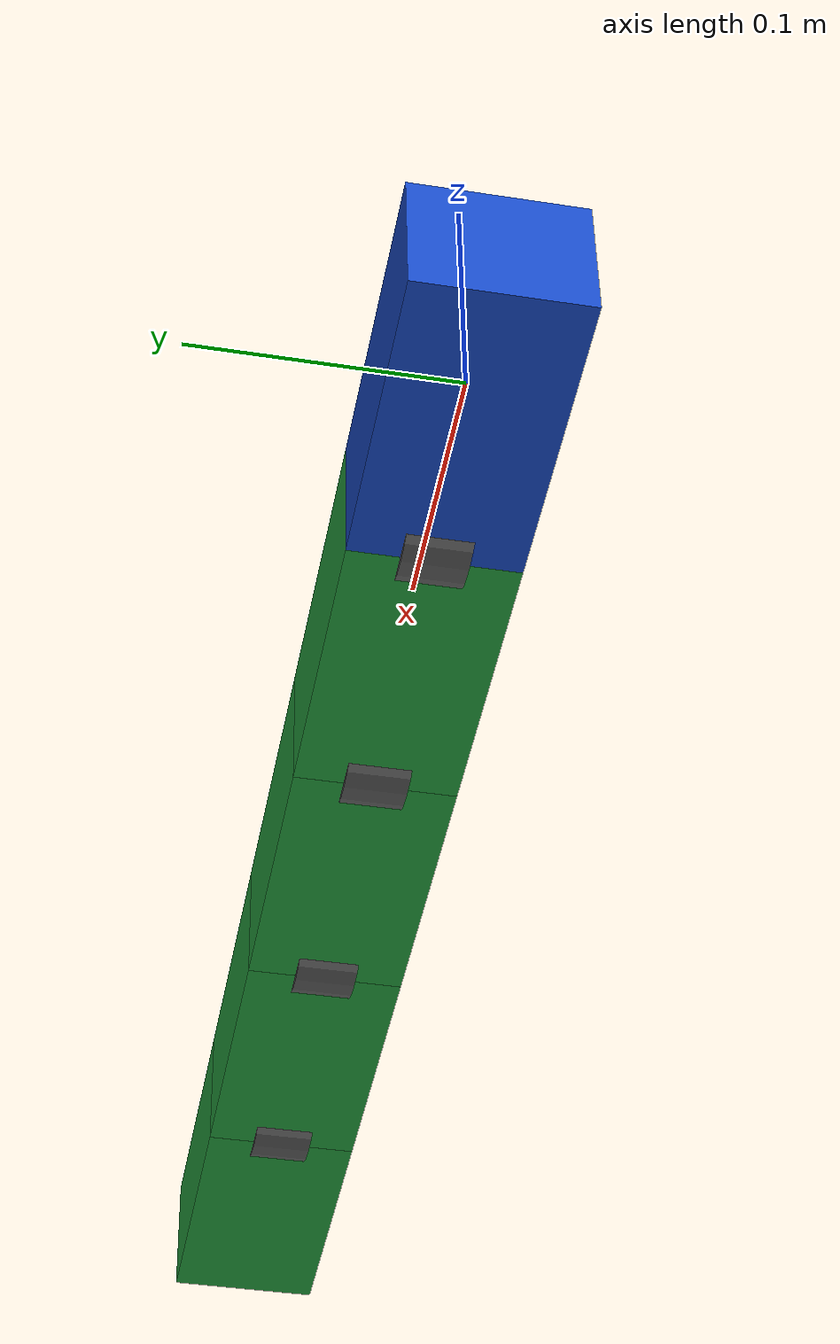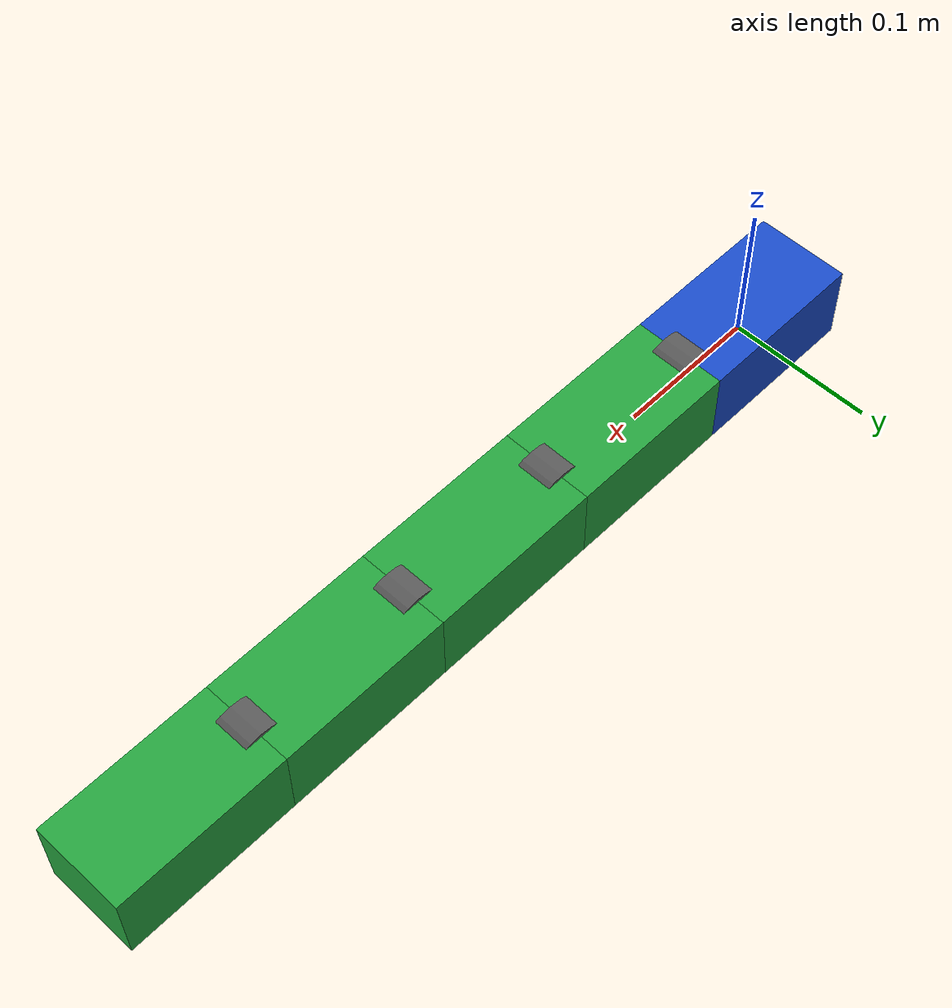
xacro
<?xml version="1.0"?>
<robot
  xmlns:xacro="http://www.ros.org/wiki/xacro"
  name="nake_robot">
<!--这个文件是主要的文件集成-->
  <!-- 启动参数 -->
  <!--默认使用单片机的串口通讯-->

  <xacro:arg name="use_mock_hardware" default="true"/>
  <xacro:arg name="serial_port" default="/dev/ttyACM0"/>

<!--导入前面定义的蛇形机器人的所有几何参数-->
  <xacro:include
    filename="$(find snake_description)/urdf/snake_links.xacro"/>

  <xacro:include
    filename="$(find snake_description)/urdf/snake.ros2_control.xacro"/>

  <!-- 蛇头 -->

  <xacro:snake_head name="base_link"/>
    <!--
    第一个关节位于蛇头尾端。
    后续关节位于前一个 segment 的尾端。
  -->
    <xacro:snake_dual_axis_module
    parent="base_link"
    index="1"
    origin_x="${head_length / 2.0}"/>

  <xacro:snake_dual_axis_module
    parent="segment_1"
    index="2"
    origin_x="${segment_length}"/>

  <xacro:snake_dual_axis_module
    parent="segment_2"
    index="3"
    origin_x="${segment_length}"/>

  <xacro:snake_dual_axis_module
    parent="segment_3"
    index="4"
    origin_x="${segment_length}"/>

  <!-- ros2_control 描述 -->

  <xacro:snake_ros2_control
    use_mock_hardware="$(arg use_mock_hardware)"
    serial_port="$(arg serial_port)"/>

</robot>

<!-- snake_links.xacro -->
<robot xmlns:xacro="http://www.ros.org/wiki/xacro">

<!--定义三组颜色-->
  <material name="snake_green">
    <color rgba="0.15 0.65 0.25 1.0"/>
  </material>

  <material name="joint_gray">
    <color rgba="0.35 0.35 0.35 1.0"/>
  </material>

  <material name="head_blue">
    <color rgba="0.10 0.30 0.80 1.0"/>
  </material>

<!--待测量的舵机与蛇的尺寸-->
  <xacro:property name="head_length" value="0.12"/>
  <xacro:property name="segment_length" value="0.12"/>
  <xacro:property name="segment_width" value="0.065"/>
  <xacro:property name="segment_height" value="0.055"/>

  <xacro:property name="head_mass" value="0.35"/>
  <xacro:property name="segment_mass" value="0.30"/>
  <xacro:property name="carrier_mass" value="0.05"/>

  <xacro:property name="joint_radius" value="0.030"/>
  <xacro:property name="joint_length" value="0.025"/>

  <!-- 长方体惯量 -->

  <xacro:macro name="box_inertial" params="mass x y z">
    <inertial>
      <origin xyz="0 0 0" rpy="0 0 0"/>

      <mass value="${mass}"/>

      <inertia
        ixx="${mass * (y * y + z * z) / 12.0}"
        ixy="0.0"
        ixz="0.0"
        iyy="${mass * (x * x + z * z) / 12.0}"
        iyz="0.0"
        izz="${mass * (x * x + y * y) / 12.0}"/>
    </inertial>
  </xacro:macro>

    <!-- 蛇头 -->

  <xacro:macro name="snake_head" params="name">
    <link name="${name}">
      <visual>
        <origin xyz="0 0 0" rpy="0 0 0"/>

        <geometry>
          <box size="${head_length}
                     ${segment_width}
                     ${segment_height}"/>
        </geometry>

        <material name="head_blue"/>
      </visual>

      <collision>
        <origin xyz="0 0 0" rpy="0 0 0"/>

        <geometry>
          <box size="${head_length}
                     ${segment_width}
                     ${segment_height}"/>
        </geometry>
      </collision>

      <xacro:box_inertial
        mass="${head_mass}"
        x="${head_length}"
        y="${segment_width}"
        z="${segment_height}"/>
    </link>
  </xacro:macro>

  <!--
    一个正交双轴关节模块。

    parent:
      前一个蛇身 link。

    index:
      模块编号，从 1 开始。

    origin_x:
      当前模块相对于 parent 原点的 X 方向位置。
  -->

  <xacro:macro name="snake_dual_axis_module"
               params="parent index origin_x">

    <!-- Pitch 中间承载 link -->

    <link name="pitch_link_${index}">
      <visual>
        <origin xyz="0 0 0" rpy="1.5708 0 0"/>

        <geometry>
          <cylinder
            radius="${joint_radius}"
            length="${joint_length}"/>
        </geometry>

        <material name="joint_gray"/>
      </visual>

      <collision>
        <origin xyz="0 0 0" rpy="1.5708 0 0"/>

        <geometry>
          <cylinder
            radius="${joint_radius}"
            length="${joint_length}"/>
        </geometry>
      </collision>

      <xacro:box_inertial
        mass="${carrier_mass}"
        x="${joint_length}"
        y="${joint_radius * 2.0}"
        z="${joint_radius * 2.0}"/>
    </link>

     <!--
      Pitch：绕 Y 轴旋转，产生上下弯曲。
      STM32 映射到奇数舵机 ID。
    -->
     <joint name="pitch_joint_${index}" type="revolute">
      <parent link="${parent}"/>
      <child link="pitch_link_${index}"/>

      <origin xyz="${origin_x} 0 0" rpy="0 0 0"/>
      <axis xyz="0 1 0"/>

      <!-- 初期限制为 ±60°，不要直接使用舵机 ±180° -->
       <limit
        lower="-1.0471976"
        upper="1.0471976"
        effort="10.0"
        velocity="2.0"/>

      <dynamics damping="0.1" friction="0.05"/>
    </joint>

    <!-- 当前模块之后的蛇身 -->
<link name="segment_${index}">
      <visual>
        <!-- 让蛇身从关节中心向 +X 延伸 -->
        <origin xyz="${segment_length / 2.0} 0 0"
                rpy="0 0 0"/>

        <geometry>
          <box size="${segment_length}
                     ${segment_width}
                     ${segment_height}"/>
        </geometry>

        <material name="snake_green"/>
      </visual>

      <collision>
        <origin xyz="${segment_length / 2.0} 0 0"
                rpy="0 0 0"/>

        <geometry>
          <box size="${segment_length}
                     ${segment_width}
                     ${segment_height}"/>
        </geometry>
      </collision>
      <inertial>
        <origin xyz="${segment_length / 2.0} 0 0"
                rpy="0 0 0"/>

        <mass value="${segment_mass}"/>

        <inertia
          ixx="${segment_mass *
                 (segment_width * segment_width +
                  segment_height * segment_height) / 12.0}"
          ixy="0.0"
          ixz="0.0"
          iyy="${segment_mass *
                 (segment_length * segment_length +
                  segment_height * segment_height) / 12.0}"
          iyz="0.0"
          izz="${segment_mass *
                 (segment_length * segment_length +
                  segment_width * segment_width) / 12.0}"/>
      </inertial>
    </link>

        <!--
      Yaw：绕 Z 轴旋转，产生水平蜿蜒。
      STM32 映射到偶数舵机 ID。
    -->

    <joint name="yaw_joint_${index}" type="revolute">
      <parent link="pitch_link_${index}"/>
      <child link="segment_${index}"/>

      <origin xyz="0 0 0" rpy="0 0 0"/>
      <axis xyz="0 0 1"/>

      <limit
        lower="-1.0471976"
        upper="1.0471976"
        effort="10.0"
        velocity="2.0"/>

      <dynamics damping="0.1" friction="0.05"/>
    </joint>

  </xacro:macro>

</robot>
